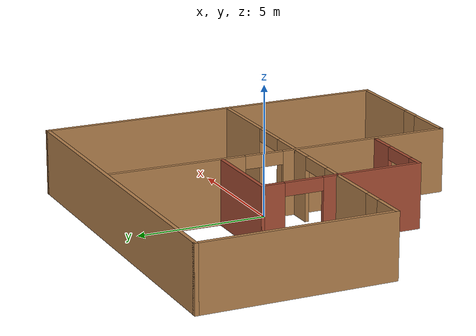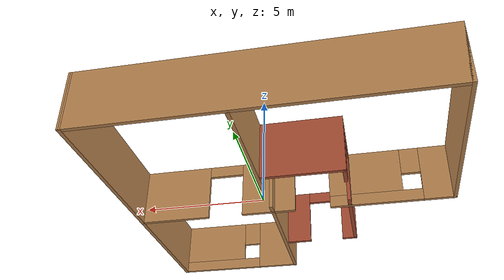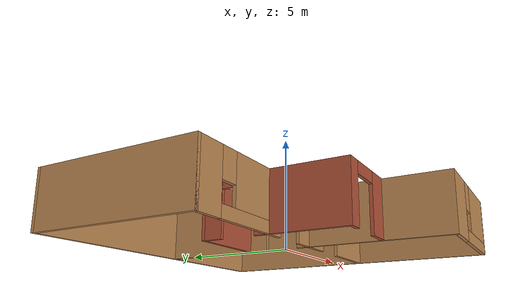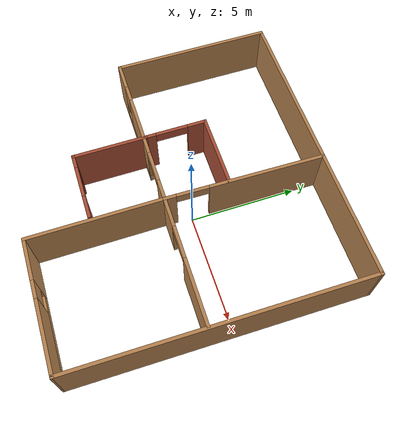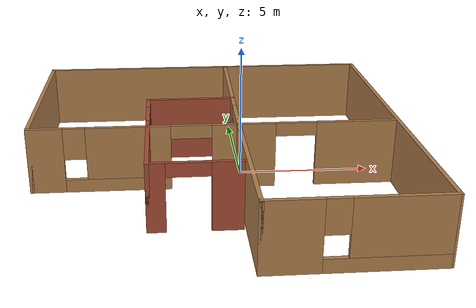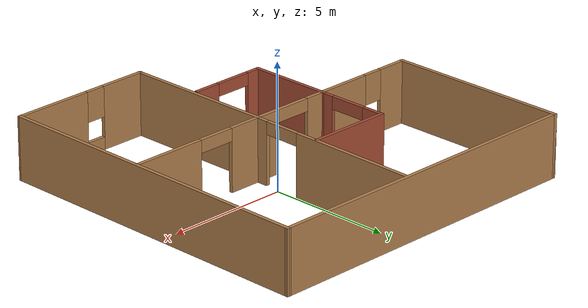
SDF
<?xml version='1.0'?>
<sdf version='1.6'>
  <model name='myhouse'>
    <pose frame=''>-0.990651 -0.551651 0 0 -0 0</pose>
    <link name='Wall_1'>
      <collision name='Wall_1_Collision'>
        <geometry>
          <box>
            <size>7.5 0.15 2.5</size>
          </box>
        </geometry>
        <pose frame=''>0 0 1.25 0 -0 0</pose>
      </collision>
      <visual name='Wall_1_Visual'>
        <pose frame=''>0 0 1.25 0 -0 0</pose>
        <geometry>
          <box>
            <size>7.5 0.15 2.5</size>
          </box>
        </geometry>
        <material>
          <script>
            <uri>file://media/materials/scripts/gazebo.material</uri>
            <name>Gazebo/Wood</name>
          </script>
          <ambient>0.435294 0.796078 0.67451 1</ambient>
        </material>
      </visual>
      <pose frame=''>-6.80042 3.05 0 0 0 -1.5708</pose>
    </link>
    <link name='Wall_10'>
      <pose frame=''>0.867844 3.04291 0 0 0 -1.5894</pose>
      <visual name='Wall_10_Visual_0'>
        <pose frame=''>-1.04574 0 1.25 0 -0 0</pose>
        <geometry>
          <box>
            <size>5.39562 0.15 2.5</size>
          </box>
        </geometry>
        <material>
          <script>
            <uri>file://media/materials/scripts/gazebo.material</uri>
            <name>Gazebo/Wood</name>
          </script>
          <ambient>0.435294 0.796078 0.67451 1</ambient>
        </material>
      </visual>
      <collision name='Wall_10_Collision_0'>
        <geometry>
          <box>
            <size>5.39562 0.15 2.5</size>
          </box>
        </geometry>
        <pose frame=''>-1.04574 0 1.25 0 -0 0</pose>
      </collision>
      <visual name='Wall_10_Visual_1'>
        <pose frame=''>3.44781 0 1.25 0 -0 0</pose>
        <geometry>
          <box>
            <size>0.59147 0.15 2.5</size>
          </box>
        </geometry>
        <material>
          <script>
            <uri>file://media/materials/scripts/gazebo.material</uri>
            <name>Gazebo/Wood</name>
          </script>
          <ambient>0.435294 0.796078 0.67451 1</ambient>
        </material>
      </visual>
      <collision name='Wall_10_Collision_1'>
        <geometry>
          <box>
            <size>0.59147 0.15 2.5</size>
          </box>
        </geometry>
        <pose frame=''>3.44781 0 1.25 0 -0 0</pose>
      </collision>
      <visual name='Wall_10_Visual_2'>
        <pose frame=''>2.40207 0 2.25 0 -0 0</pose>
        <geometry>
          <box>
            <size>1.5 0.15 0.5</size>
          </box>
        </geometry>
        <material>
          <script>
            <uri>file://media/materials/scripts/gazebo.material</uri>
            <name>Gazebo/Wood</name>
          </script>
          <ambient>0.435294 0.796078 0.67451 1</ambient>
        </material>
      </visual>
      <collision name='Wall_10_Collision_2'>
        <geometry>
          <box>
            <size>1.5 0.15 0.5</size>
          </box>
        </geometry>
        <pose frame=''>2.40207 0 2.25 0 -0 0</pose>
      </collision>
    </link>
    <link name='Wall_11'>
      <pose frame=''>3.72458 -0.625 0 0 -0 0</pose>
      <visual name='Wall_11_Visual_0'>
        <pose frame=''>-2.27857 0 1.25 0 -0 0</pose>
        <geometry>
          <box>
            <size>1.44286 0.15 2.5</size>
          </box>
        </geometry>
        <material>
          <script>
            <uri>file://media/materials/scripts/gazebo.material</uri>
            <name>Gazebo/Wood</name>
          </script>
          <ambient>0.996078 0.47451 0.0196078 1</ambient>
        </material>
      </visual>
      <collision name='Wall_11_Collision_0'>
        <geometry>
          <box>
            <size>1.44286 0.15 2.5</size>
          </box>
        </geometry>
        <pose frame=''>-2.27857 0 1.25 0 -0 0</pose>
      </collision>
      <visual name='Wall_11_Visual_1'>
        <pose frame=''>1.47143 0 1.25 0 -0 0</pose>
        <geometry>
          <box>
            <size>3.05714 0.15 2.5</size>
          </box>
        </geometry>
        <material>
          <script>
            <uri>file://media/materials/scripts/gazebo.material</uri>
            <name>Gazebo/Wood</name>
          </script>
          <ambient>0.996078 0.47451 0.0196078 1</ambient>
        </material>
      </visual>
      <collision name='Wall_11_Collision_1'>
        <geometry>
          <box>
            <size>3.05714 0.15 2.5</size>
          </box>
        </geometry>
        <pose frame=''>1.47143 0 1.25 0 -0 0</pose>
      </collision>
      <visual name='Wall_11_Visual_2'>
        <pose frame=''>-0.807143 0 2.25 0 -0 0</pose>
        <geometry>
          <box>
            <size>1.5 0.15 0.5</size>
          </box>
        </geometry>
        <material>
          <script>
            <uri>file://media/materials/scripts/gazebo.material</uri>
            <name>Gazebo/Wood</name>
          </script>
          <ambient>0.996078 0.47451 0.0196078 1</ambient>
        </material>
      </visual>
      <collision name='Wall_11_Collision_2'>
        <geometry>
          <box>
            <size>1.5 0.15 0.5</size>
          </box>
        </geometry>
        <pose frame=''>-0.807143 0 2.25 0 -0 0</pose>
      </collision>
    </link>
    <link name='Wall_13'>
      <collision name='Wall_13_Collision'>
        <geometry>
          <box>
            <size>3.5 0.15 2.5</size>
          </box>
        </geometry>
        <pose frame=''>0 0 1.25 0 -0 0</pose>
      </collision>
      <visual name='Wall_13_Visual'>
        <pose frame=''>0 0 1.25 0 -0 0</pose>
        <geometry>
          <box>
            <size>3.5 0.15 2.5</size>
          </box>
        </geometry>
        <material>
          <script>
            <uri>file://media/materials/scripts/gazebo.material</uri>
            <name>Gazebo/Bricks</name>
          </script>
          <ambient>1 1 1 1</ambient>
        </material>
      </visual>
      <pose frame=''>-0.830667 2.30583 0 0 -0 3.14159</pose>
    </link>
    <link name='Wall_14'>
      <pose frame=''>-2.50567 0.880826 0 0 0 -1.5708</pose>
      <visual name='Wall_14_Visual_0'>
        <pose frame=''>-1.03541 0 1.25 0 -0 0</pose>
        <geometry>
          <box>
            <size>0.929175 0.15 2.5</size>
          </box>
        </geometry>
        <material>
          <script>
            <uri>file://media/materials/scripts/gazebo.material</uri>
            <name>Gazebo/Bricks</name>
          </script>
          <ambient>1 1 1 1</ambient>
        </material>
      </visual>
      <collision name='Wall_14_Collision_0'>
        <geometry>
          <box>
            <size>0.929175 0.15 2.5</size>
          </box>
        </geometry>
        <pose frame=''>-1.03541 0 1.25 0 -0 0</pose>
      </collision>
      <visual name='Wall_14_Visual_1'>
        <pose frame=''>1.21459 0 1.25 0 -0 0</pose>
        <geometry>
          <box>
            <size>0.570825 0.15 2.5</size>
          </box>
        </geometry>
        <material>
          <script>
            <uri>file://media/materials/scripts/gazebo.material</uri>
            <name>Gazebo/Bricks</name>
          </script>
          <ambient>1 1 1 1</ambient>
        </material>
      </visual>
      <collision name='Wall_14_Collision_1'>
        <geometry>
          <box>
            <size>0.570825 0.15 2.5</size>
          </box>
        </geometry>
        <pose frame=''>1.21459 0 1.25 0 -0 0</pose>
      </collision>
      <visual name='Wall_14_Visual_2'>
        <pose frame=''>0.179175 0 2.25 0 -0 0</pose>
        <geometry>
          <box>
            <size>1.5 0.15 0.5</size>
          </box>
        </geometry>
        <material>
          <script>
            <uri>file://media/materials/scripts/gazebo.material</uri>
            <name>Gazebo/Bricks</name>
          </script>
          <ambient>1 1 1 1</ambient>
        </material>
      </visual>
      <collision name='Wall_14_Collision_2'>
        <geometry>
          <box>
            <size>1.5 0.15 0.5</size>
          </box>
        </geometry>
        <pose frame=''>0.179175 0 2.25 0 -0 0</pose>
      </collision>
    </link>
    <link name='Wall_17'>
      <collision name='Wall_17_Collision'>
        <geometry>
          <box>
            <size>3.5 0.15 2.5</size>
          </box>
        </geometry>
        <pose frame=''>0 0 1.25 0 -0 0</pose>
      </collision>
      <visual name='Wall_17_Visual'>
        <pose frame=''>0 0 1.25 0 -0 0</pose>
        <geometry>
          <box>
            <size>3.5 0.15 2.5</size>
          </box>
        </geometry>
        <material>
          <script>
            <uri>file://media/materials/scripts/gazebo.material</uri>
            <name>Gazebo/Bricks</name>
          </script>
          <ambient>1 1 1 1</ambient>
        </material>
      </visual>
      <pose frame=''>-2.50567 -2.21917 0 0 0 -1.5708</pose>
    </link>
    <link name='Wall_18'>
      <pose frame=''>-0.955667 -3.89417 0 0 -0 0</pose>
      <visual name='Wall_18_Visual_0'>
        <pose frame=''>-1.29247 0 1.25 0 -0 0</pose>
        <geometry>
          <box>
            <size>0.665053 0.15 2.5</size>
          </box>
        </geometry>
        <material>
          <script>
            <uri>file://media/materials/scripts/gazebo.material</uri>
            <name>Gazebo/Bricks</name>
          </script>
          <ambient>1 1 1 1</ambient>
        </material>
      </visual>
      <collision name='Wall_18_Collision_0'>
        <geometry>
          <box>
            <size>0.665053 0.15 2.5</size>
          </box>
        </geometry>
        <pose frame=''>-1.29247 0 1.25 0 -0 0</pose>
      </collision>
      <visual name='Wall_18_Visual_1'>
        <pose frame=''>1.08253 0 1.25 0 -0 0</pose>
        <geometry>
          <box>
            <size>1.08495 0.15 2.5</size>
          </box>
        </geometry>
        <material>
          <script>
            <uri>file://media/materials/scripts/gazebo.material</uri>
            <name>Gazebo/Bricks</name>
          </script>
          <ambient>1 1 1 1</ambient>
        </material>
      </visual>
      <collision name='Wall_18_Collision_1'>
        <geometry>
          <box>
            <size>1.08495 0.15 2.5</size>
          </box>
        </geometry>
        <pose frame=''>1.08253 0 1.25 0 -0 0</pose>
      </collision>
      <visual name='Wall_18_Visual_2'>
        <pose frame=''>-0.209947 0 2.25 0 -0 0</pose>
        <geometry>
          <box>
            <size>1.5 0.15 0.5</size>
          </box>
        </geometry>
        <material>
          <script>
            <uri>file://media/materials/scripts/gazebo.material</uri>
            <name>Gazebo/Bricks</name>
          </script>
          <ambient>1 1 1 1</ambient>
        </material>
      </visual>
      <collision name='Wall_18_Collision_2'>
        <geometry>
          <box>
            <size>1.5 0.15 0.5</size>
          </box>
        </geometry>
        <pose frame=''>-0.209947 0 2.25 0 -0 0</pose>
      </collision>
    </link>
    <link name='Wall_2'>
      <pose frame=''>-3.00042 -0.625 0 0 -0 0</pose>
      <visual name='Wall_2_Visual_0'>
        <pose frame=''>-3.21297 0 1.25 0 -0 0</pose>
        <geometry>
          <box>
            <size>1.32406 0.15 2.5</size>
          </box>
        </geometry>
        <material>
          <script>
            <uri>file://media/materials/scripts/gazebo.material</uri>
            <name>Gazebo/Wood</name>
          </script>
          <ambient>0.435294 0.796078 0.67451 1</ambient>
        </material>
      </visual>
      <collision name='Wall_2_Collision_0'>
        <geometry>
          <box>
            <size>1.32406 0.15 2.5</size>
          </box>
        </geometry>
        <pose frame=''>-3.21297 0 1.25 0 -0 0</pose>
      </collision>
      <visual name='Wall_2_Visual_1'>
        <pose frame=''>3.35058 0 1.25 0 -0 0</pose>
        <geometry>
          <box>
            <size>1.04883 0.15 2.5</size>
          </box>
        </geometry>
        <material>
          <script>
            <uri>file://media/materials/scripts/gazebo.material</uri>
            <name>Gazebo/Wood</name>
          </script>
          <ambient>0.435294 0.796078 0.67451 1</ambient>
        </material>
      </visual>
      <collision name='Wall_2_Collision_1'>
        <geometry>
          <box>
            <size>1.04883 0.15 2.5</size>
          </box>
        </geometry>
        <pose frame=''>3.35058 0 1.25 0 -0 0</pose>
      </collision>
      <visual name='Wall_2_Visual_2'>
        <pose frame=''>-0.612385 0 0.25 0 -0 0</pose>
        <geometry>
          <box>
            <size>3.8771 0.15 0.5</size>
          </box>
        </geometry>
        <material>
          <script>
            <uri>file://media/materials/scripts/gazebo.material</uri>
            <name>Gazebo/Wood</name>
          </script>
          <ambient>0.435294 0.796078 0.67451 1</ambient>
        </material>
      </visual>
      <collision name='Wall_2_Collision_2'>
        <geometry>
          <box>
            <size>3.8771 0.15 0.5</size>
          </box>
        </geometry>
        <pose frame=''>-0.612385 0 0.25 0 -0 0</pose>
      </collision>
      <visual name='Wall_2_Visual_3'>
        <pose frame=''>-0.212385 0 1.5 0 -0 0</pose>
        <geometry>
          <box>
            <size>3.0771 0.15 2</size>
          </box>
        </geometry>
        <material>
          <script>
            <uri>file://media/materials/scripts/gazebo.material</uri>
            <name>Gazebo/Wood</name>
          </script>
          <ambient>0.435294 0.796078 0.67451 1</ambient>
        </material>
      </visual>
      <collision name='Wall_2_Collision_3'>
        <geometry>
          <box>
            <size>3.0771 0.15 2</size>
          </box>
        </geometry>
        <pose frame=''>-0.212385 0 1.5 0 -0 0</pose>
      </collision>
      <visual name='Wall_2_Visual_4'>
        <pose frame=''>-2.15094 0 1.9 0 -0 0</pose>
        <geometry>
          <box>
            <size>0.8 0.15 1.2</size>
          </box>
        </geometry>
        <material>
          <script>
            <uri>file://media/materials/scripts/gazebo.material</uri>
            <name>Gazebo/Wood</name>
          </script>
          <ambient>0.435294 0.796078 0.67451 1</ambient>
        </material>
      </visual>
      <collision name='Wall_2_Collision_4'>
        <geometry>
          <box>
            <size>0.8 0.15 1.2</size>
          </box>
        </geometry>
        <pose frame=''>-2.15094 0 1.9 0 -0 0</pose>
      </collision>
      <visual name='Wall_2_Visual_5'>
        <pose frame=''>2.07617 0 2.25 0 -0 0</pose>
        <geometry>
          <box>
            <size>1.5 0.15 0.5</size>
          </box>
        </geometry>
        <material>
          <script>
            <uri>file://media/materials/scripts/gazebo.material</uri>
            <name>Gazebo/Wood</name>
          </script>
          <ambient>0.435294 0.796078 0.67451 1</ambient>
        </material>
      </visual>
      <collision name='Wall_2_Collision_5'>
        <geometry>
          <box>
            <size>1.5 0.15 0.5</size>
          </box>
        </geometry>
        <pose frame=''>2.07617 0 2.25 0 -0 0</pose>
      </collision>
    </link>
    <link name='Wall_3'>
      <collision name='Wall_3_Collision'>
        <geometry>
          <box>
            <size>6.25 0.15 2.5</size>
          </box>
        </geometry>
        <pose frame=''>0 0 1.25 0 -0 0</pose>
      </collision>
      <visual name='Wall_3_Visual'>
        <pose frame=''>0 0 1.25 0 -0 0</pose>
        <geometry>
          <box>
            <size>6.25 0.15 2.5</size>
          </box>
        </geometry>
        <material>
          <script>
            <uri>file://media/materials/scripts/gazebo.material</uri>
            <name>Gazebo/Wood</name>
          </script>
          <ambient>0.996078 0.47451 0.0196078 1</ambient>
        </material>
      </visual>
      <pose frame=''>0.799584 -3.675 0 0 0 -1.5708</pose>
    </link>
    <link name='Wall_4'>
      <pose frame=''>3.72458 -6.725 0 0 -0 0</pose>
      <visual name='Wall_4_Visual_0'>
        <pose frame=''>-2.02358 0 1.25 0 -0 0</pose>
        <geometry>
          <box>
            <size>1.95284 0.15 2.5</size>
          </box>
        </geometry>
        <material>
          <script>
            <uri>file://media/materials/scripts/gazebo.material</uri>
            <name>Gazebo/Wood</name>
          </script>
          <ambient>1 1 1 1</ambient>
        </material>
      </visual>
      <collision name='Wall_4_Collision_0'>
        <geometry>
          <box>
            <size>1.95284 0.15 2.5</size>
          </box>
        </geometry>
        <pose frame=''>-2.02358 0 1.25 0 -0 0</pose>
      </collision>
      <visual name='Wall_4_Visual_1'>
        <pose frame=''>0.976418 0 0.25 0 -0 0</pose>
        <geometry>
          <box>
            <size>4.04716 0.15 0.5</size>
          </box>
        </geometry>
        <material>
          <script>
            <uri>file://media/materials/scripts/gazebo.material</uri>
            <name>Gazebo/Wood</name>
          </script>
          <ambient>1 1 1 1</ambient>
        </material>
      </visual>
      <collision name='Wall_4_Collision_1'>
        <geometry>
          <box>
            <size>4.04716 0.15 0.5</size>
          </box>
        </geometry>
        <pose frame=''>0.976418 0 0.25 0 -0 0</pose>
      </collision>
      <visual name='Wall_4_Visual_2'>
        <pose frame=''>1.37642 0 1.5 0 -0 0</pose>
        <geometry>
          <box>
            <size>3.24716 0.15 2</size>
          </box>
        </geometry>
        <material>
          <script>
            <uri>file://media/materials/scripts/gazebo.material</uri>
            <name>Gazebo/Wood</name>
          </script>
          <ambient>1 1 1 1</ambient>
        </material>
      </visual>
      <collision name='Wall_4_Collision_2'>
        <geometry>
          <box>
            <size>3.24716 0.15 2</size>
          </box>
        </geometry>
        <pose frame=''>1.37642 0 1.5 0 -0 0</pose>
      </collision>
      <visual name='Wall_4_Visual_3'>
        <pose frame=''>-0.647164 0 1.9 0 -0 0</pose>
        <geometry>
          <box>
            <size>0.8 0.15 1.2</size>
          </box>
        </geometry>
        <material>
          <script>
            <uri>file://media/materials/scripts/gazebo.material</uri>
            <name>Gazebo/Wood</name>
          </script>
          <ambient>1 1 1 1</ambient>
        </material>
      </visual>
      <collision name='Wall_4_Collision_3'>
        <geometry>
          <box>
            <size>0.8 0.15 1.2</size>
          </box>
        </geometry>
        <pose frame=''>-0.647164 0 1.9 0 -0 0</pose>
      </collision>
    </link>
    <link name='Wall_7'>
      <collision name='Wall_7_Collision'>
        <geometry>
          <box>
            <size>13.75 0.15 2.5</size>
          </box>
        </geometry>
        <pose frame=''>0 0 1.25 0 -0 0</pose>
      </collision>
      <visual name='Wall_7_Visual'>
        <pose frame=''>0 0 1.25 0 -0 0</pose>
        <geometry>
          <box>
            <size>13.75 0.15 2.5</size>
          </box>
        </geometry>
        <material>
          <script>
            <uri>file://media/materials/scripts/gazebo.material</uri>
            <name>Gazebo/Wood</name>
          </script>
          <ambient>0.435294 0.796078 0.67451 1</ambient>
        </material>
      </visual>
      <pose frame=''>-0.000416 6.725 0 0 -0 0</pose>
    </link>
    <link name='Wall_8'>
      <collision name='Wall_8_Collision'>
        <geometry>
          <box>
            <size>13.6008 0.15 2.5</size>
          </box>
        </geometry>
        <pose frame=''>0 0 1.25 0 -0 0</pose>
      </collision>
      <visual name='Wall_8_Visual'>
        <pose frame=''>0 0 1.25 0 -0 0</pose>
        <geometry>
          <box>
            <size>13.6008 0.15 2.5</size>
          </box>
        </geometry>
        <material>
          <script>
            <uri>file://media/materials/scripts/gazebo.material</uri>
            <name>Gazebo/Wood</name>
          </script>
          <ambient>0.996078 0.47451 0.0196078 1</ambient>
        </material>
      </visual>
      <pose frame=''>6.72458 0 0 0 0 -1.58195</pose>
    </link>
    <static>1</static>
  </model>
</sdf>
